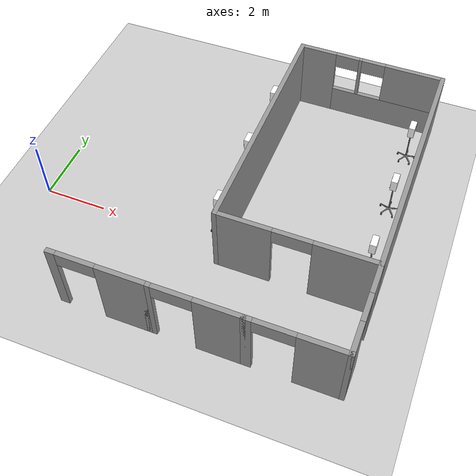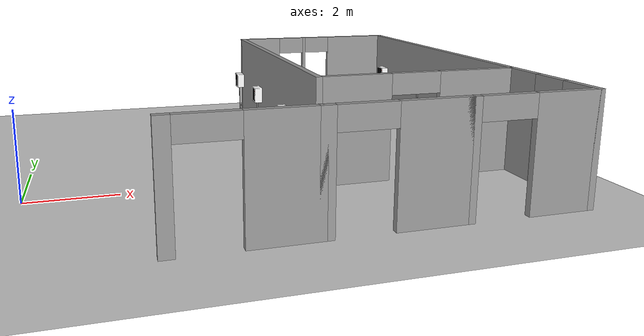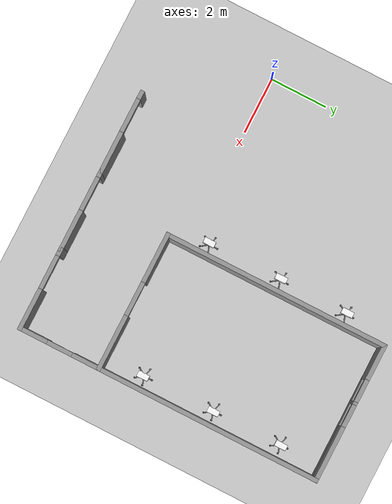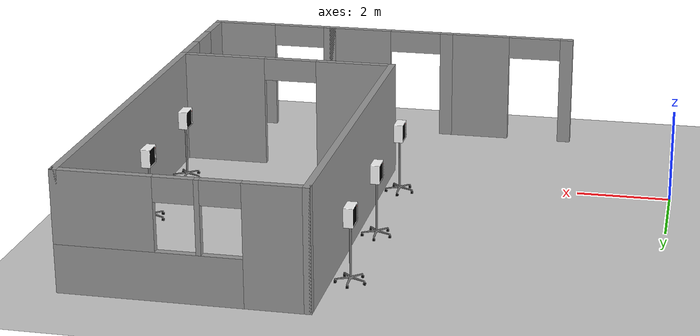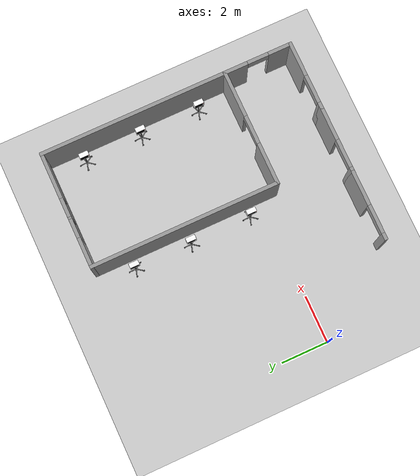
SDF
<sdf version="1.6">
 <world name="default">
  <model name="ground_plane">
   <static>1</static>
   <link name="link">
    <collision name="collision">
     <geometry><plane><normal>0 0 1</normal><size>100 100</size></plane></geometry>
     <surface><friction><ode><mu>100</mu><mu2>50</mu2></ode></friction></surface>
    </collision>
    <visual name="visual">
     <cast_shadows>0</cast_shadows>
     <geometry><plane><normal>0 0 1</normal><size>100 100</size></plane></geometry>
     <material>
      <script><uri>file://media/materials/scripts/gazebo.material</uri><name>Gazebo/Grey</name></script>
     </material>
    </visual>
   </link>
  </model>
  <model name="vitals_monitor_clone_2">
   <static>1</static>
   <link name="vitals_monitor">
    <collision name="vitals_monitor">
     <geometry><mesh><uri>model://vitals_monitor/meshes/model.dae</uri></mesh></geometry>
    </collision>
    <visual name="vitals_monitor_mesh">
     <geometry><mesh><uri>model://vitals_monitor/meshes/model.dae</uri></mesh></geometry>
    </visual>
   </link>
   <pose>10.6596 5.74993 0 0 0 -1.5708</pose>
  </model>
  <model name="vitals_monitor_clone_2_clone">
   <static>1</static>
   <link name="vitals_monitor">
    <collision name="vitals_monitor">
     <geometry><mesh><uri>model://vitals_monitor/meshes/model.dae</uri></mesh></geometry>
    </collision>
    <visual name="vitals_monitor_mesh">
     <geometry><mesh><uri>model://vitals_monitor/meshes/model.dae</uri></mesh></geometry>
    </visual>
   </link>
   <pose>10.6882 3.29236 0 0 0 -1.5708</pose>
  </model>
  <model name="vitals_monitor_clone_2_clone_0">
   <static>1</static>
   <link name="vitals_monitor">
    <collision name="vitals_monitor">
     <geometry><mesh><uri>model://vitals_monitor/meshes/model.dae</uri></mesh></geometry>
    </collision>
    <visual name="vitals_monitor_mesh">
     <geometry><mesh><uri>model://vitals_monitor/meshes/model.dae</uri></mesh></geometry>
    </visual>
   </link>
   <pose>10.7026 0.733748 0 0 0 -1.5708</pose>
  </model>
  <model name="vitals_monitor_clone_2_clone_1">
   <static>1</static>
   <link name="vitals_monitor">
    <collision name="vitals_monitor">
     <geometry><mesh><uri>model://vitals_monitor/meshes/model.dae</uri></mesh></geometry>
    </collision>
    <visual name="vitals_monitor_mesh">
     <geometry><mesh><uri>model://vitals_monitor/meshes/model.dae</uri></mesh></geometry>
    </visual>
   </link>
   <pose>5.84678 0.669607 0 0 0 -1.5708</pose>
  </model>
  <model name="vitals_monitor_clone_2_clone_2">
   <static>1</static>
   <link name="vitals_monitor">
    <collision name="vitals_monitor">
     <geometry><mesh><uri>model://vitals_monitor/meshes/model.dae</uri></mesh></geometry>
    </collision>
    <visual name="vitals_monitor_mesh">
     <geometry><mesh><uri>model://vitals_monitor/meshes/model.dae</uri></mesh></geometry>
    </visual>
   </link>
   <pose>5.82137 3.28498 0 0 0 -1.5708</pose>
  </model>
  <model name="vitals_monitor_clone_2_clone_3">
   <static>1</static>
   <link name="vitals_monitor">
    <collision name="vitals_monitor">
     <geometry><mesh><uri>model://vitals_monitor/meshes/model.dae</uri></mesh></geometry>
    </collision>
    <visual name="vitals_monitor_mesh">
     <geometry><mesh><uri>model://vitals_monitor/meshes/model.dae</uri></mesh></geometry>
    </visual>
   </link>
   <pose>5.83292 5.71579 0 0 0 -1.5708</pose>
  </model>
  <model name="hospital_v1">
   <link name="Wall_16">
    <pose>6.275 3.35 0 0 0 -1.5708</pose>
    <visual name="Wall_16_Visual">
     <pose>0 0 1.25 0 -0 0</pose>
     <geometry><box><size>8 0.15 2.5</size></box></geometry>
     <material>
      <script><uri>file://media/materials/scripts/gazebo.material</uri><name>Gazebo/Grey</name></script>
      <ambient>1 1 1 1</ambient>
     </material>
     <meta><layer>0</layer></meta>
    </visual>
    <collision name="Wall_16_Collision">
     <pose>0 0 1.25 0 -0 0</pose>
     <geometry><box><size>8 0.15 2.5</size></box></geometry>
     <surface>
      <friction>
       <ode><mu>1</mu><mu2>1</mu2><fdir1>0 0 0</fdir1><slip1>0</slip1><slip2>0</slip2></ode>
       <torsional>
        <coefficient>1</coefficient>
        <patch_radius>0</patch_radius>
        <surface_radius>0</surface_radius>
        <use_patch_radius>1</use_patch_radius>
        <ode><slip>0</slip></ode>
       </torsional>
      </friction>
      <bounce><restitution_coefficient>0</restitution_coefficient><threshold>1e+06</threshold></bounce>
      <contact>
       <collide_without_contact>0</collide_without_contact>
       <collide_without_contact_bitmask>1</collide_without_contact_bitmask>
       <collide_bitmask>1</collide_bitmask>
       <ode>
        <soft_cfm>0</soft_cfm>
        <soft_erp>0.2</soft_erp>
        <kp>1e+13</kp>
        <kd>1</kd>
        <max_vel>0.01</max_vel>
        <min_depth>0</min_depth>
       </ode>
       <bullet>
        <split_impulse>1</split_impulse>
        <split_impulse_penetration_threshold>-0.01</split_impulse_penetration_threshold>
        <soft_cfm>0</soft_cfm>
        <soft_erp>0.2</soft_erp>
        <kp>1e+13</kp>
        <kd>1</kd>
       </bullet>
      </contact>
     </surface>
    </collision>
   </link>
   <link name="Wall_24">
    <pose>8.7 7.275 0 0 -0 0</pose>
    <inertial>
     <mass>1</mass>
     <inertia><ixx>1</ixx><ixy>0</ixy><ixz>0</ixz><iyy>1</iyy><iyz>0</iyz><izz>1</izz></inertia>
    </inertial>
    <visual name="Wall_24_Visual_0">
     <pose>-1.85 0 1.25 0 -0 0</pose>
     <geometry><box><size>1.3 0.15 2.5</size></box></geometry>
     <material>
      <script><uri>file://media/materials/scripts/gazebo.material</uri><name>Gazebo/Grey</name></script>
      <ambient>1 1 1 1</ambient>
      <shader type="vertex"><normal_map>__default__</normal_map></shader>
      <diffuse>0.7 0.7 0.7 1</diffuse>
      <specular>0.01 0.01 0.01 1</specular>
      <emissive>0 0 0 1</emissive>
     </material>
     <meta><layer>0</layer></meta>
    </visual>
    <visual name="Wall_24_Visual_5">
     <pose>0.1 0 2.25 0 -0 0</pose>
     <geometry><box><size>0.8 0.15 0.5</size></box></geometry>
     <material>
      <script><uri>file://media/materials/scripts/gazebo.material</uri><name>Gazebo/Grey</name></script>
      <ambient>1 1 1 1</ambient>
      <shader type="vertex"><normal_map>__default__</normal_map></shader>
      <diffuse>0.7 0.7 0.7 1</diffuse>
      <specular>0.01 0.01 0.01 1</specular>
      <emissive>0 0 0 1</emissive>
     </material>
     <meta><layer>0</layer></meta>
    </visual>
    <visual name="Wall_24_Visual_3">
     <pose>1.5 0 1.75 0 -0 0</pose>
     <geometry><box><size>2 0.15 1.5</size></box></geometry>
     <material>
      <script><uri>file://media/materials/scripts/gazebo.material</uri><name>Gazebo/Grey</name></script>
      <ambient>1 1 1 1</ambient>
      <shader type="vertex"><normal_map>__default__</normal_map></shader>
      <diffuse>0.7 0.7 0.7 1</diffuse>
      <specular>0.01 0.01 0.01 1</specular>
      <emissive>0 0 0 1</emissive>
     </material>
     <meta><layer>0</layer></meta>
    </visual>
    <visual name="Wall_24_Visual_2">
     <pose>-0.35 0 1.75 0 -0 0</pose>
     <geometry><box><size>0.1 0.15 1.5</size></box></geometry>
     <material>
      <script><uri>file://media/materials/scripts/gazebo.material</uri><name>Gazebo/Grey</name></script>
      <ambient>1 1 1 1</ambient>
      <shader type="vertex"><normal_map>__default__</normal_map></shader>
      <diffuse>0.7 0.7 0.7 1</diffuse>
      <specular>0.01 0.01 0.01 1</specular>
      <emissive>0 0 0 1</emissive>
     </material>
     <meta><layer>0</layer></meta>
    </visual>
    <visual name="Wall_24_Visual_4">
     <pose>-0.8 0 2.25 0 -0 0</pose>
     <geometry><box><size>0.8 0.15 0.5</size></box></geometry>
     <material>
      <script><uri>file://media/materials/scripts/gazebo.material</uri><name>Gazebo/Grey</name></script>
      <ambient>1 1 1 1</ambient>
      <shader type="vertex"><normal_map>__default__</normal_map></shader>
      <diffuse>0.7 0.7 0.7 1</diffuse>
      <specular>0.01 0.01 0.01 1</specular>
      <emissive>0 0 0 1</emissive>
     </material>
     <meta><layer>0</layer></meta>
    </visual>
    <visual name="Wall_24_Visual_1">
     <pose>0.65 0 0.5 0 -0 0</pose>
     <geometry><box><size>3.7 0.15 1</size></box></geometry>
     <material>
      <script><uri>file://media/materials/scripts/gazebo.material</uri><name>Gazebo/Grey</name></script>
      <ambient>1 1 1 1</ambient>
      <shader type="vertex"><normal_map>__default__</normal_map></shader>
      <diffuse>0.7 0.7 0.7 1</diffuse>
      <specular>0.01 0.01 0.01 1</specular>
      <emissive>0 0 0 1</emissive>
     </material>
     <meta><layer>0</layer></meta>
    </visual>
    <collision name="Wall_24_Collision_1">
     <pose>0.65 0 0.5 0 -0 0</pose>
     <geometry><box><size>3.7 0.15 1</size></box></geometry>
     <surface>
      <friction>
       <ode><mu>1</mu><mu2>1</mu2><fdir1>0 0 0</fdir1><slip1>0</slip1><slip2>0</slip2></ode>
       <torsional>
        <coefficient>1</coefficient>
        <patch_radius>0</patch_radius>
        <surface_radius>0</surface_radius>
        <use_patch_radius>1</use_patch_radius>
        <ode><slip>0</slip></ode>
       </torsional>
      </friction>
      <bounce><restitution_coefficient>0</restitution_coefficient><threshold>1e+06</threshold></bounce>
      <contact>
       <collide_without_contact>0</collide_without_contact>
       <collide_without_contact_bitmask>1</collide_without_contact_bitmask>
       <collide_bitmask>1</collide_bitmask>
       <ode>
        <soft_cfm>0</soft_cfm>
        <soft_erp>0.2</soft_erp>
        <kp>1e+13</kp>
        <kd>1</kd>
        <max_vel>0.01</max_vel>
        <min_depth>0</min_depth>
       </ode>
       <bullet>
        <split_impulse>1</split_impulse>
        <split_impulse_penetration_threshold>-0.01</split_impulse_penetration_threshold>
        <soft_cfm>0</soft_cfm>
        <soft_erp>0.2</soft_erp>
        <kp>1e+13</kp>
        <kd>1</kd>
       </bullet>
      </contact>
     </surface>
    </collision>
    <collision name="Wall_24_Collision_5">
     <pose>0.1 0 2.25 0 -0 0</pose>
     <geometry><box><size>0.8 0.15 0.5</size></box></geometry>
     <surface>
      <friction>
       <ode><mu>1</mu><mu2>1</mu2><fdir1>0 0 0</fdir1><slip1>0</slip1><slip2>0</slip2></ode>
       <torsional>
        <coefficient>1</coefficient>
        <patch_radius>0</patch_radius>
        <surface_radius>0</surface_radius>
        <use_patch_radius>1</use_patch_radius>
        <ode><slip>0</slip></ode>
       </torsional>
      </friction>
      <bounce><restitution_coefficient>0</restitution_coefficient><threshold>1e+06</threshold></bounce>
      <contact>
       <collide_without_contact>0</collide_without_contact>
       <collide_without_contact_bitmask>1</collide_without_contact_bitmask>
       <collide_bitmask>1</collide_bitmask>
       <ode>
        <soft_cfm>0</soft_cfm>
        <soft_erp>0.2</soft_erp>
        <kp>1e+13</kp>
        <kd>1</kd>
        <max_vel>0.01</max_vel>
        <min_depth>0</min_depth>
       </ode>
       <bullet>
        <split_impulse>1</split_impulse>
        <split_impulse_penetration_threshold>-0.01</split_impulse_penetration_threshold>
        <soft_cfm>0</soft_cfm>
        <soft_erp>0.2</soft_erp>
        <kp>1e+13</kp>
        <kd>1</kd>
       </bullet>
      </contact>
     </surface>
    </collision>
    <collision name="Wall_24_Collision_0">
     <pose>-1.85 0 1.25 0 -0 0</pose>
     <geometry><box><size>1.3 0.15 2.5</size></box></geometry>
     <surface>
      <friction>
       <ode><mu>1</mu><mu2>1</mu2><fdir1>0 0 0</fdir1><slip1>0</slip1><slip2>0</slip2></ode>
       <torsional>
        <coefficient>1</coefficient>
        <patch_radius>0</patch_radius>
        <surface_radius>0</surface_radius>
        <use_patch_radius>1</use_patch_radius>
        <ode><slip>0</slip></ode>
       </torsional>
      </friction>
      <bounce><restitution_coefficient>0</restitution_coefficient><threshold>1e+06</threshold></bounce>
      <contact>
       <collide_without_contact>0</collide_without_contact>
       <collide_without_contact_bitmask>1</collide_without_contact_bitmask>
       <collide_bitmask>1</collide_bitmask>
       <ode>
        <soft_cfm>0</soft_cfm>
        <soft_erp>0.2</soft_erp>
        <kp>1e+13</kp>
        <kd>1</kd>
        <max_vel>0.01</max_vel>
        <min_depth>0</min_depth>
       </ode>
       <bullet>
        <split_impulse>1</split_impulse>
        <split_impulse_penetration_threshold>-0.01</split_impulse_penetration_threshold>
        <soft_cfm>0</soft_cfm>
        <soft_erp>0.2</soft_erp>
        <kp>1e+13</kp>
        <kd>1</kd>
       </bullet>
      </contact>
     </surface>
    </collision>
    <collision name="Wall_24_Collision_3">
     <pose>1.5 0 1.75 0 -0 0</pose>
     <geometry><box><size>2 0.15 1.5</size></box></geometry>
     <surface>
      <friction>
       <ode><mu>1</mu><mu2>1</mu2><fdir1>0 0 0</fdir1><slip1>0</slip1><slip2>0</slip2></ode>
       <torsional>
        <coefficient>1</coefficient>
        <patch_radius>0</patch_radius>
        <surface_radius>0</surface_radius>
        <use_patch_radius>1</use_patch_radius>
        <ode><slip>0</slip></ode>
       </torsional>
      </friction>
      <bounce><restitution_coefficient>0</restitution_coefficient><threshold>1e+06</threshold></bounce>
      <contact>
       <collide_without_contact>0</collide_without_contact>
       <collide_without_contact_bitmask>1</collide_without_contact_bitmask>
       <collide_bitmask>1</collide_bitmask>
       <ode>
        <soft_cfm>0</soft_cfm>
        <soft_erp>0.2</soft_erp>
        <kp>1e+13</kp>
        <kd>1</kd>
        <max_vel>0.01</max_vel>
        <min_depth>0</min_depth>
       </ode>
       <bullet>
        <split_impulse>1</split_impulse>
        <split_impulse_penetration_threshold>-0.01</split_impulse_penetration_threshold>
        <soft_cfm>0</soft_cfm>
        <soft_erp>0.2</soft_erp>
        <kp>1e+13</kp>
        <kd>1</kd>
       </bullet>
      </contact>
     </surface>
    </collision>
    <collision name="Wall_24_Collision_2">
     <pose>-0.35 0 1.75 0 -0 0</pose>
     <geometry><box><size>0.1 0.15 1.5</size></box></geometry>
     <surface>
      <friction>
       <ode><mu>1</mu><mu2>1</mu2><fdir1>0 0 0</fdir1><slip1>0</slip1><slip2>0</slip2></ode>
       <torsional>
        <coefficient>1</coefficient>
        <patch_radius>0</patch_radius>
        <surface_radius>0</surface_radius>
        <use_patch_radius>1</use_patch_radius>
        <ode><slip>0</slip></ode>
       </torsional>
      </friction>
      <bounce><restitution_coefficient>0</restitution_coefficient><threshold>1e+06</threshold></bounce>
      <contact>
       <collide_without_contact>0</collide_without_contact>
       <collide_without_contact_bitmask>1</collide_without_contact_bitmask>
       <collide_bitmask>1</collide_bitmask>
       <ode>
        <soft_cfm>0</soft_cfm>
        <soft_erp>0.2</soft_erp>
        <kp>1e+13</kp>
        <kd>1</kd>
        <max_vel>0.01</max_vel>
        <min_depth>0</min_depth>
       </ode>
       <bullet>
        <split_impulse>1</split_impulse>
        <split_impulse_penetration_threshold>-0.01</split_impulse_penetration_threshold>
        <soft_cfm>0</soft_cfm>
        <soft_erp>0.2</soft_erp>
        <kp>1e+13</kp>
        <kd>1</kd>
       </bullet>
      </contact>
     </surface>
    </collision>
    <collision name="Wall_24_Collision_4">
     <pose>-0.8 0 2.25 0 -0 0</pose>
     <geometry><box><size>0.8 0.15 0.5</size></box></geometry>
     <surface>
      <friction>
       <ode><mu>1</mu><mu2>1</mu2><fdir1>0 0 0</fdir1><slip1>0</slip1><slip2>0</slip2></ode>
       <torsional>
        <coefficient>1</coefficient>
        <patch_radius>0</patch_radius>
        <surface_radius>0</surface_radius>
        <use_patch_radius>1</use_patch_radius>
        <ode><slip>0</slip></ode>
       </torsional>
      </friction>
      <bounce><restitution_coefficient>0</restitution_coefficient><threshold>1e+06</threshold></bounce>
      <contact>
       <collide_without_contact>0</collide_without_contact>
       <collide_without_contact_bitmask>1</collide_without_contact_bitmask>
       <collide_bitmask>1</collide_bitmask>
       <ode>
        <soft_cfm>0</soft_cfm>
        <soft_erp>0.2</soft_erp>
        <kp>1e+13</kp>
        <kd>1</kd>
        <max_vel>0.01</max_vel>
        <min_depth>0</min_depth>
       </ode>
       <bullet>
        <split_impulse>1</split_impulse>
        <split_impulse_penetration_threshold>-0.01</split_impulse_penetration_threshold>
        <soft_cfm>0</soft_cfm>
        <soft_erp>0.2</soft_erp>
        <kp>1e+13</kp>
        <kd>1</kd>
       </bullet>
      </contact>
     </surface>
    </collision>
   </link>
   <link name="Wall_25">
    <pose>11.125 3.35 0 0 0 -1.5708</pose>
    <visual name="Wall_25_Visual">
     <pose>0 0 1.25 0 -0 0</pose>
     <geometry><box><size>8 0.15 2.5</size></box></geometry>
     <material>
      <script><uri>file://media/materials/scripts/gazebo.material</uri><name>Gazebo/Grey</name></script>
      <ambient>1 1 1 1</ambient>
     </material>
     <meta><layer>0</layer></meta>
    </visual>
    <collision name="Wall_25_Collision">
     <pose>0 0 1.25 0 -0 0</pose>
     <geometry><box><size>8 0.15 2.5</size></box></geometry>
     <surface>
      <friction>
       <ode><mu>1</mu><mu2>1</mu2><fdir1>0 0 0</fdir1><slip1>0</slip1><slip2>0</slip2></ode>
       <torsional>
        <coefficient>1</coefficient>
        <patch_radius>0</patch_radius>
        <surface_radius>0</surface_radius>
        <use_patch_radius>1</use_patch_radius>
        <ode><slip>0</slip></ode>
       </torsional>
      </friction>
      <bounce><restitution_coefficient>0</restitution_coefficient><threshold>1e+06</threshold></bounce>
      <contact>
       <collide_without_contact>0</collide_without_contact>
       <collide_without_contact_bitmask>1</collide_without_contact_bitmask>
       <collide_bitmask>1</collide_bitmask>
       <ode>
        <soft_cfm>0</soft_cfm>
        <soft_erp>0.2</soft_erp>
        <kp>1e+13</kp>
        <kd>1</kd>
        <max_vel>0.01</max_vel>
        <min_depth>0</min_depth>
       </ode>
       <bullet>
        <split_impulse>1</split_impulse>
        <split_impulse_penetration_threshold>-0.01</split_impulse_penetration_threshold>
        <soft_cfm>0</soft_cfm>
        <soft_erp>0.2</soft_erp>
        <kp>1e+13</kp>
        <kd>1</kd>
       </bullet>
      </contact>
     </surface>
    </collision>
   </link>
   <link name="Wall_26">
    <pose>8.7 -0.575 0 0 -0 3.14159</pose>
    <visual name="Wall_26_Visual_0">
     <pose>-1.5 0 1.25 0 -0 0</pose>
     <geometry><box><size>2 0.15 2.5</size></box></geometry>
     <material>
      <script><uri>file://media/materials/scripts/gazebo.material</uri><name>Gazebo/Grey</name></script>
      <ambient>1 1 1 1</ambient>
     </material>
     <meta><layer>0</layer></meta>
    </visual>
    <visual name="Wall_26_Visual_1">
     <pose>1.6 0 1.25 0 -0 0</pose>
     <geometry><box><size>1.8 0.15 2.5</size></box></geometry>
     <material>
      <script><uri>file://media/materials/scripts/gazebo.material</uri><name>Gazebo/Grey</name></script>
      <ambient>1 1 1 1</ambient>
     </material>
     <meta><layer>0</layer></meta>
    </visual>
    <visual name="Wall_26_Visual_2">
     <pose>0.1 0 2.25 0 -0 0</pose>
     <geometry><box><size>1.2 0.15 0.5</size></box></geometry>
     <material>
      <script><uri>file://media/materials/scripts/gazebo.material</uri><name>Gazebo/Grey</name></script>
      <ambient>1 1 1 1</ambient>
     </material>
     <meta><layer>0</layer></meta>
    </visual>
    <collision name="Wall_26_Collision_0">
     <pose>-1.5 0 1.25 0 -0 0</pose>
     <geometry><box><size>2 0.15 2.5</size></box></geometry>
     <surface>
      <friction>
       <ode><mu>1</mu><mu2>1</mu2><fdir1>0 0 0</fdir1><slip1>0</slip1><slip2>0</slip2></ode>
       <torsional>
        <coefficient>1</coefficient>
        <patch_radius>0</patch_radius>
        <surface_radius>0</surface_radius>
        <use_patch_radius>1</use_patch_radius>
        <ode><slip>0</slip></ode>
       </torsional>
      </friction>
      <bounce><restitution_coefficient>0</restitution_coefficient><threshold>1e+06</threshold></bounce>
      <contact>
       <collide_without_contact>0</collide_without_contact>
       <collide_without_contact_bitmask>1</collide_without_contact_bitmask>
       <collide_bitmask>1</collide_bitmask>
       <ode>
        <soft_cfm>0</soft_cfm>
        <soft_erp>0.2</soft_erp>
        <kp>1e+13</kp>
        <kd>1</kd>
        <max_vel>0.01</max_vel>
        <min_depth>0</min_depth>
       </ode>
       <bullet>
        <split_impulse>1</split_impulse>
        <split_impulse_penetration_threshold>-0.01</split_impulse_penetration_threshold>
        <soft_cfm>0</soft_cfm>
        <soft_erp>0.2</soft_erp>
        <kp>1e+13</kp>
        <kd>1</kd>
       </bullet>
      </contact>
     </surface>
    </collision>
    <collision name="Wall_26_Collision_1">
     <pose>1.6 0 1.25 0 -0 0</pose>
     <geometry><box><size>1.8 0.15 2.5</size></box></geometry>
     <surface>
      <friction>
       <ode><mu>1</mu><mu2>1</mu2><fdir1>0 0 0</fdir1><slip1>0</slip1><slip2>0</slip2></ode>
       <torsional>
        <coefficient>1</coefficient>
        <patch_radius>0</patch_radius>
        <surface_radius>0</surface_radius>
        <use_patch_radius>1</use_patch_radius>
        <ode><slip>0</slip></ode>
       </torsional>
      </friction>
      <bounce><restitution_coefficient>0</restitution_coefficient><threshold>1e+06</threshold></bounce>
      <contact>
       <collide_without_contact>0</collide_without_contact>
       <collide_without_contact_bitmask>1</collide_without_contact_bitmask>
       <collide_bitmask>1</collide_bitmask>
       <ode>
        <soft_cfm>0</soft_cfm>
        <soft_erp>0.2</soft_erp>
        <kp>1e+13</kp>
        <kd>1</kd>
        <max_vel>0.01</max_vel>
        <min_depth>0</min_depth>
       </ode>
       <bullet>
        <split_impulse>1</split_impulse>
        <split_impulse_penetration_threshold>-0.01</split_impulse_penetration_threshold>
        <soft_cfm>0</soft_cfm>
        <soft_erp>0.2</soft_erp>
        <kp>1e+13</kp>
        <kd>1</kd>
       </bullet>
      </contact>
     </surface>
    </collision>
    <collision name="Wall_26_Collision_2">
     <pose>0.1 0 2.25 0 -0 0</pose>
     <geometry><box><size>1.2 0.15 0.5</size></box></geometry>
     <surface>
      <friction>
       <ode><mu>1</mu><mu2>1</mu2><fdir1>0 0 0</fdir1><slip1>0</slip1><slip2>0</slip2></ode>
       <torsional>
        <coefficient>1</coefficient>
        <patch_radius>0</patch_radius>
        <surface_radius>0</surface_radius>
        <use_patch_radius>1</use_patch_radius>
        <ode><slip>0</slip></ode>
       </torsional>
      </friction>
      <bounce><restitution_coefficient>0</restitution_coefficient><threshold>1e+06</threshold></bounce>
      <contact>
       <collide_without_contact>0</collide_without_contact>
       <collide_without_contact_bitmask>1</collide_without_contact_bitmask>
       <collide_bitmask>1</collide_bitmask>
       <ode>
        <soft_cfm>0</soft_cfm>
        <soft_erp>0.2</soft_erp>
        <kp>1e+13</kp>
        <kd>1</kd>
        <max_vel>0.01</max_vel>
        <min_depth>0</min_depth>
       </ode>
       <bullet>
        <split_impulse>1</split_impulse>
        <split_impulse_penetration_threshold>-0.01</split_impulse_penetration_threshold>
        <soft_cfm>0</soft_cfm>
        <soft_erp>0.2</soft_erp>
        <kp>1e+13</kp>
        <kd>1</kd>
       </bullet>
      </contact>
     </surface>
    </collision>
   </link>
   <link name="Wall_28">
    <pose>11.125 -2 0 0 0 -1.5708</pose>
    <visual name="Wall_28_Visual_2">
     <pose>0 0 2.25 0 -0 0</pose>
     <geometry><box><size>0.9 0.15 0.5</size></box></geometry>
     <material>
      <script><uri>file://media/materials/scripts/gazebo.material</uri><name>Gazebo/Grey</name></script>
      <ambient>1 1 1 1</ambient>
     </material>
     <meta><layer>0</layer></meta>
    </visual>
    <visual name="Wall_28_Visual_0">
     <pose>-0.975 0 1.25 0 -0 0</pose>
     <geometry><box><size>1.05 0.15 2.5</size></box></geometry>
     <material>
      <script><uri>file://media/materials/scripts/gazebo.material</uri><name>Gazebo/Grey</name></script>
      <ambient>1 1 1 1</ambient>
     </material>
     <meta><layer>0</layer></meta>
    </visual>
    <visual name="Wall_28_Visual_1">
     <pose>0.975 0 1.25 0 -0 0</pose>
     <geometry><box><size>1.05 0.15 2.5</size></box></geometry>
     <material>
      <script><uri>file://media/materials/scripts/gazebo.material</uri><name>Gazebo/Grey</name></script>
      <ambient>1 1 1 1</ambient>
     </material>
     <meta><layer>0</layer></meta>
    </visual>
    <collision name="Wall_28_Collision_0">
     <pose>-0.975 0 1.25 0 -0 0</pose>
     <geometry><box><size>1.05 0.15 2.5</size></box></geometry>
     <surface>
      <friction>
       <ode><mu>1</mu><mu2>1</mu2><fdir1>0 0 0</fdir1><slip1>0</slip1><slip2>0</slip2></ode>
       <torsional>
        <coefficient>1</coefficient>
        <patch_radius>0</patch_radius>
        <surface_radius>0</surface_radius>
        <use_patch_radius>1</use_patch_radius>
        <ode><slip>0</slip></ode>
       </torsional>
      </friction>
      <bounce><restitution_coefficient>0</restitution_coefficient><threshold>1e+06</threshold></bounce>
      <contact>
       <collide_without_contact>0</collide_without_contact>
       <collide_without_contact_bitmask>1</collide_without_contact_bitmask>
       <collide_bitmask>1</collide_bitmask>
       <ode>
        <soft_cfm>0</soft_cfm>
        <soft_erp>0.2</soft_erp>
        <kp>1e+13</kp>
        <kd>1</kd>
        <max_vel>0.01</max_vel>
        <min_depth>0</min_depth>
       </ode>
       <bullet>
        <split_impulse>1</split_impulse>
        <split_impulse_penetration_threshold>-0.01</split_impulse_penetration_threshold>
        <soft_cfm>0</soft_cfm>
        <soft_erp>0.2</soft_erp>
        <kp>1e+13</kp>
        <kd>1</kd>
       </bullet>
      </contact>
     </surface>
    </collision>
    <collision name="Wall_28_Collision_1">
     <pose>0.975 0 1.25 0 -0 0</pose>
     <geometry><box><size>1.05 0.15 2.5</size></box></geometry>
     <surface>
      <friction>
       <ode><mu>1</mu><mu2>1</mu2><fdir1>0 0 0</fdir1><slip1>0</slip1><slip2>0</slip2></ode>
       <torsional>
        <coefficient>1</coefficient>
        <patch_radius>0</patch_radius>
        <surface_radius>0</surface_radius>
        <use_patch_radius>1</use_patch_radius>
        <ode><slip>0</slip></ode>
       </torsional>
      </friction>
      <bounce><restitution_coefficient>0</restitution_coefficient><threshold>1e+06</threshold></bounce>
      <contact>
       <collide_without_contact>0</collide_without_contact>
       <collide_without_contact_bitmask>1</collide_without_contact_bitmask>
       <collide_bitmask>1</collide_bitmask>
       <ode>
        <soft_cfm>0</soft_cfm>
        <soft_erp>0.2</soft_erp>
        <kp>1e+13</kp>
        <kd>1</kd>
        <max_vel>0.01</max_vel>
        <min_depth>0</min_depth>
       </ode>
       <bullet>
        <split_impulse>1</split_impulse>
        <split_impulse_penetration_threshold>-0.01</split_impulse_penetration_threshold>
        <soft_cfm>0</soft_cfm>
        <soft_erp>0.2</soft_erp>
        <kp>1e+13</kp>
        <kd>1</kd>
       </bullet>
      </contact>
     </surface>
    </collision>
    <collision name="Wall_28_Collision_2">
     <pose>0 0 2.25 0 -0 0</pose>
     <geometry><box><size>0.9 0.15 0.5</size></box></geometry>
     <surface>
      <friction>
       <ode><mu>1</mu><mu2>1</mu2><fdir1>0 0 0</fdir1><slip1>0</slip1><slip2>0</slip2></ode>
       <torsional>
        <coefficient>1</coefficient>
        <patch_radius>0</patch_radius>
        <surface_radius>0</surface_radius>
        <use_patch_radius>1</use_patch_radius>
        <ode><slip>0</slip></ode>
       </torsional>
      </friction>
      <bounce><restitution_coefficient>0</restitution_coefficient><threshold>1e+06</threshold></bounce>
      <contact>
       <collide_without_contact>0</collide_without_contact>
       <collide_without_contact_bitmask>1</collide_without_contact_bitmask>
       <collide_bitmask>1</collide_bitmask>
       <ode>
        <soft_cfm>0</soft_cfm>
        <soft_erp>0.2</soft_erp>
        <kp>1e+13</kp>
        <kd>1</kd>
        <max_vel>0.01</max_vel>
        <min_depth>0</min_depth>
       </ode>
       <bullet>
        <split_impulse>1</split_impulse>
        <split_impulse_penetration_threshold>-0.01</split_impulse_penetration_threshold>
        <soft_cfm>0</soft_cfm>
        <soft_erp>0.2</soft_erp>
        <kp>1e+13</kp>
        <kd>1</kd>
       </bullet>
      </contact>
     </surface>
    </collision>
   </link>
   <link name="Wall_32">
    <pose>9.7 -3.425 0 0 -0 0</pose>
    <visual name="Wall_32_Visual_1">
     <pose>0.75 0 1.25 0 -0 0</pose>
     <geometry><box><size>1.5 0.15 2.5</size></box></geometry>
     <material>
      <script><uri>file://media/materials/scripts/gazebo.material</uri><name>Gazebo/Grey</name></script>
      <ambient>1 1 1 1</ambient>
     </material>
     <meta><layer>0</layer></meta>
    </visual>
    <visual name="Wall_32_Visual_0">
     <pose>-1.35 0 1.25 0 -0 0</pose>
     <geometry><box><size>0.3 0.15 2.5</size></box></geometry>
     <material>
      <script><uri>file://media/materials/scripts/gazebo.material</uri><name>Gazebo/Grey</name></script>
      <ambient>1 1 1 1</ambient>
     </material>
     <meta><layer>0</layer></meta>
    </visual>
    <visual name="Wall_32_Visual_2">
     <pose>-0.6 0 2.25 0 -0 0</pose>
     <geometry><box><size>1.2 0.15 0.5</size></box></geometry>
     <material>
      <script><uri>file://media/materials/scripts/gazebo.material</uri><name>Gazebo/Grey</name></script>
      <ambient>1 1 1 1</ambient>
     </material>
     <meta><layer>0</layer></meta>
    </visual>
    <collision name="Wall_32_Collision_2">
     <pose>-0.6 0 2.25 0 -0 0</pose>
     <geometry><box><size>1.2 0.15 0.5</size></box></geometry>
     <surface>
      <friction>
       <ode><mu>1</mu><mu2>1</mu2><fdir1>0 0 0</fdir1><slip1>0</slip1><slip2>0</slip2></ode>
       <torsional>
        <coefficient>1</coefficient>
        <patch_radius>0</patch_radius>
        <surface_radius>0</surface_radius>
        <use_patch_radius>1</use_patch_radius>
        <ode><slip>0</slip></ode>
       </torsional>
      </friction>
      <bounce><restitution_coefficient>0</restitution_coefficient><threshold>1e+06</threshold></bounce>
      <contact>
       <collide_without_contact>0</collide_without_contact>
       <collide_without_contact_bitmask>1</collide_without_contact_bitmask>
       <collide_bitmask>1</collide_bitmask>
       <ode>
        <soft_cfm>0</soft_cfm>
        <soft_erp>0.2</soft_erp>
        <kp>1e+13</kp>
        <kd>1</kd>
        <max_vel>0.01</max_vel>
        <min_depth>0</min_depth>
       </ode>
       <bullet>
        <split_impulse>1</split_impulse>
        <split_impulse_penetration_threshold>-0.01</split_impulse_penetration_threshold>
        <soft_cfm>0</soft_cfm>
        <soft_erp>0.2</soft_erp>
        <kp>1e+13</kp>
        <kd>1</kd>
       </bullet>
      </contact>
     </surface>
    </collision>
    <collision name="Wall_32_Collision_0">
     <pose>-1.35 0 1.25 0 -0 0</pose>
     <geometry><box><size>0.3 0.15 2.5</size></box></geometry>
     <surface>
      <friction>
       <ode><mu>1</mu><mu2>1</mu2><fdir1>0 0 0</fdir1><slip1>0</slip1><slip2>0</slip2></ode>
       <torsional>
        <coefficient>1</coefficient>
        <patch_radius>0</patch_radius>
        <surface_radius>0</surface_radius>
        <use_patch_radius>1</use_patch_radius>
        <ode><slip>0</slip></ode>
       </torsional>
      </friction>
      <bounce><restitution_coefficient>0</restitution_coefficient><threshold>1e+06</threshold></bounce>
      <contact>
       <collide_without_contact>0</collide_without_contact>
       <collide_without_contact_bitmask>1</collide_without_contact_bitmask>
       <collide_bitmask>1</collide_bitmask>
       <ode>
        <soft_cfm>0</soft_cfm>
        <soft_erp>0.2</soft_erp>
        <kp>1e+13</kp>
        <kd>1</kd>
        <max_vel>0.01</max_vel>
        <min_depth>0</min_depth>
       </ode>
       <bullet>
        <split_impulse>1</split_impulse>
        <split_impulse_penetration_threshold>-0.01</split_impulse_penetration_threshold>
        <soft_cfm>0</soft_cfm>
        <soft_erp>0.2</soft_erp>
        <kp>1e+13</kp>
        <kd>1</kd>
       </bullet>
      </contact>
     </surface>
    </collision>
    <collision name="Wall_32_Collision_1">
     <pose>0.75 0 1.25 0 -0 0</pose>
     <geometry><box><size>1.5 0.15 2.5</size></box></geometry>
     <surface>
      <friction>
       <ode><mu>1</mu><mu2>1</mu2><fdir1>0 0 0</fdir1><slip1>0</slip1><slip2>0</slip2></ode>
       <torsional>
        <coefficient>1</coefficient>
        <patch_radius>0</patch_radius>
        <surface_radius>0</surface_radius>
        <use_patch_radius>1</use_patch_radius>
        <ode><slip>0</slip></ode>
       </torsional>
      </friction>
      <bounce><restitution_coefficient>0</restitution_coefficient><threshold>1e+06</threshold></bounce>
      <contact>
       <collide_without_contact>0</collide_without_contact>
       <collide_without_contact_bitmask>1</collide_without_contact_bitmask>
       <collide_bitmask>1</collide_bitmask>
       <ode>
        <soft_cfm>0</soft_cfm>
        <soft_erp>0.2</soft_erp>
        <kp>1e+13</kp>
        <kd>1</kd>
        <max_vel>0.01</max_vel>
        <min_depth>0</min_depth>
       </ode>
       <bullet>
        <split_impulse>1</split_impulse>
        <split_impulse_penetration_threshold>-0.01</split_impulse_penetration_threshold>
        <soft_cfm>0</soft_cfm>
        <soft_erp>0.2</soft_erp>
        <kp>1e+13</kp>
        <kd>1</kd>
       </bullet>
      </contact>
     </surface>
    </collision>
   </link>
   <link name="Wall_36">
    <pose>6.85 -3.425 0 0 -0 0</pose>
    <visual name="Wall_36_Visual_2">
     <pose>-0.6 0 2.25 0 -0 0</pose>
     <geometry><box><size>1.2 0.15 0.5</size></box></geometry>
     <material>
      <script><uri>file://media/materials/scripts/gazebo.material</uri><name>Gazebo/Grey</name></script>
      <ambient>1 1 1 1</ambient>
     </material>
     <meta><layer>0</layer></meta>
    </visual>
    <visual name="Wall_36_Visual_1">
     <pose>0.75 0 1.25 0 -0 0</pose>
     <geometry><box><size>1.5 0.15 2.5</size></box></geometry>
     <material>
      <script><uri>file://media/materials/scripts/gazebo.material</uri><name>Gazebo/Grey</name></script>
      <ambient>1 1 1 1</ambient>
     </material>
     <meta><layer>0</layer></meta>
    </visual>
    <visual name="Wall_36_Visual_0">
     <pose>-1.35 0 1.25 0 -0 0</pose>
     <geometry><box><size>0.3 0.15 2.5</size></box></geometry>
     <material>
      <script><uri>file://media/materials/scripts/gazebo.material</uri><name>Gazebo/Grey</name></script>
      <ambient>1 1 1 1</ambient>
     </material>
     <meta><layer>0</layer></meta>
    </visual>
    <collision name="Wall_36_Collision_0">
     <pose>-1.35 0 1.25 0 -0 0</pose>
     <geometry><box><size>0.3 0.15 2.5</size></box></geometry>
     <surface>
      <friction>
       <ode><mu>1</mu><mu2>1</mu2><fdir1>0 0 0</fdir1><slip1>0</slip1><slip2>0</slip2></ode>
       <torsional>
        <coefficient>1</coefficient>
        <patch_radius>0</patch_radius>
        <surface_radius>0</surface_radius>
        <use_patch_radius>1</use_patch_radius>
        <ode><slip>0</slip></ode>
       </torsional>
      </friction>
      <bounce><restitution_coefficient>0</restitution_coefficient><threshold>1e+06</threshold></bounce>
      <contact>
       <collide_without_contact>0</collide_without_contact>
       <collide_without_contact_bitmask>1</collide_without_contact_bitmask>
       <collide_bitmask>1</collide_bitmask>
       <ode>
        <soft_cfm>0</soft_cfm>
        <soft_erp>0.2</soft_erp>
        <kp>1e+13</kp>
        <kd>1</kd>
        <max_vel>0.01</max_vel>
        <min_depth>0</min_depth>
       </ode>
       <bullet>
        <split_impulse>1</split_impulse>
        <split_impulse_penetration_threshold>-0.01</split_impulse_penetration_threshold>
        <soft_cfm>0</soft_cfm>
        <soft_erp>0.2</soft_erp>
        <kp>1e+13</kp>
        <kd>1</kd>
       </bullet>
      </contact>
     </surface>
    </collision>
    <collision name="Wall_36_Collision_1">
     <pose>0.75 0 1.25 0 -0 0</pose>
     <geometry><box><size>1.5 0.15 2.5</size></box></geometry>
     <surface>
      <friction>
       <ode><mu>1</mu><mu2>1</mu2><fdir1>0 0 0</fdir1><slip1>0</slip1><slip2>0</slip2></ode>
       <torsional>
        <coefficient>1</coefficient>
        <patch_radius>0</patch_radius>
        <surface_radius>0</surface_radius>
        <use_patch_radius>1</use_patch_radius>
        <ode><slip>0</slip></ode>
       </torsional>
      </friction>
      <bounce><restitution_coefficient>0</restitution_coefficient><threshold>1e+06</threshold></bounce>
      <contact>
       <collide_without_contact>0</collide_without_contact>
       <collide_without_contact_bitmask>1</collide_without_contact_bitmask>
       <collide_bitmask>1</collide_bitmask>
       <ode>
        <soft_cfm>0</soft_cfm>
        <soft_erp>0.2</soft_erp>
        <kp>1e+13</kp>
        <kd>1</kd>
        <max_vel>0.01</max_vel>
        <min_depth>0</min_depth>
       </ode>
       <bullet>
        <split_impulse>1</split_impulse>
        <split_impulse_penetration_threshold>-0.01</split_impulse_penetration_threshold>
        <soft_cfm>0</soft_cfm>
        <soft_erp>0.2</soft_erp>
        <kp>1e+13</kp>
        <kd>1</kd>
       </bullet>
      </contact>
     </surface>
    </collision>
    <collision name="Wall_36_Collision_2">
     <pose>-0.6 0 2.25 0 -0 0</pose>
     <geometry><box><size>1.2 0.15 0.5</size></box></geometry>
     <surface>
      <friction>
       <ode><mu>1</mu><mu2>1</mu2><fdir1>0 0 0</fdir1><slip1>0</slip1><slip2>0</slip2></ode>
       <torsional>
        <coefficient>1</coefficient>
        <patch_radius>0</patch_radius>
        <surface_radius>0</surface_radius>
        <use_patch_radius>1</use_patch_radius>
        <ode><slip>0</slip></ode>
       </torsional>
      </friction>
      <bounce><restitution_coefficient>0</restitution_coefficient><threshold>1e+06</threshold></bounce>
      <contact>
       <collide_without_contact>0</collide_without_contact>
       <collide_without_contact_bitmask>1</collide_without_contact_bitmask>
       <collide_bitmask>1</collide_bitmask>
       <ode>
        <soft_cfm>0</soft_cfm>
        <soft_erp>0.2</soft_erp>
        <kp>1e+13</kp>
        <kd>1</kd>
        <max_vel>0.01</max_vel>
        <min_depth>0</min_depth>
       </ode>
       <bullet>
        <split_impulse>1</split_impulse>
        <split_impulse_penetration_threshold>-0.01</split_impulse_penetration_threshold>
        <soft_cfm>0</soft_cfm>
        <soft_erp>0.2</soft_erp>
        <kp>1e+13</kp>
        <kd>1</kd>
       </bullet>
      </contact>
     </surface>
    </collision>
   </link>
   <link name="Wall_40">
    <pose>4 -3.425 0 0 -0 0</pose>
    <visual name="Wall_40_Visual_2">
     <pose>-0.6 0 2.25 0 -0 0</pose>
     <geometry><box><size>1.2 0.15 0.5</size></box></geometry>
     <material>
      <script><uri>file://media/materials/scripts/gazebo.material</uri><name>Gazebo/Grey</name></script>
      <ambient>1 1 1 1</ambient>
     </material>
     <meta><layer>0</layer></meta>
    </visual>
    <visual name="Wall_40_Visual_1">
     <pose>0.75 0 1.25 0 -0 0</pose>
     <geometry><box><size>1.5 0.15 2.5</size></box></geometry>
     <material>
      <script><uri>file://media/materials/scripts/gazebo.material</uri><name>Gazebo/Grey</name></script>
      <ambient>1 1 1 1</ambient>
     </material>
     <meta><layer>0</layer></meta>
    </visual>
    <visual name="Wall_40_Visual_0">
     <pose>-1.35 0 1.25 0 -0 0</pose>
     <geometry><box><size>0.3 0.15 2.5</size></box></geometry>
     <material>
      <script><uri>file://media/materials/scripts/gazebo.material</uri><name>Gazebo/Grey</name></script>
      <ambient>1 1 1 1</ambient>
     </material>
     <meta><layer>0</layer></meta>
    </visual>
    <collision name="Wall_40_Collision_2">
     <pose>-0.6 0 2.25 0 -0 0</pose>
     <geometry><box><size>1.2 0.15 0.5</size></box></geometry>
     <surface>
      <friction>
       <ode><mu>1</mu><mu2>1</mu2><fdir1>0 0 0</fdir1><slip1>0</slip1><slip2>0</slip2></ode>
       <torsional>
        <coefficient>1</coefficient>
        <patch_radius>0</patch_radius>
        <surface_radius>0</surface_radius>
        <use_patch_radius>1</use_patch_radius>
        <ode><slip>0</slip></ode>
       </torsional>
      </friction>
      <bounce><restitution_coefficient>0</restitution_coefficient><threshold>1e+06</threshold></bounce>
      <contact>
       <collide_without_contact>0</collide_without_contact>
       <collide_without_contact_bitmask>1</collide_without_contact_bitmask>
       <collide_bitmask>1</collide_bitmask>
       <ode>
        <soft_cfm>0</soft_cfm>
        <soft_erp>0.2</soft_erp>
        <kp>1e+13</kp>
        <kd>1</kd>
        <max_vel>0.01</max_vel>
        <min_depth>0</min_depth>
       </ode>
       <bullet>
        <split_impulse>1</split_impulse>
        <split_impulse_penetration_threshold>-0.01</split_impulse_penetration_threshold>
        <soft_cfm>0</soft_cfm>
        <soft_erp>0.2</soft_erp>
        <kp>1e+13</kp>
        <kd>1</kd>
       </bullet>
      </contact>
     </surface>
    </collision>
    <collision name="Wall_40_Collision_0">
     <pose>-1.35 0 1.25 0 -0 0</pose>
     <geometry><box><size>0.3 0.15 2.5</size></box></geometry>
     <surface>
      <friction>
       <ode><mu>1</mu><mu2>1</mu2><fdir1>0 0 0</fdir1><slip1>0</slip1><slip2>0</slip2></ode>
       <torsional>
        <coefficient>1</coefficient>
        <patch_radius>0</patch_radius>
        <surface_radius>0</surface_radius>
        <use_patch_radius>1</use_patch_radius>
        <ode><slip>0</slip></ode>
       </torsional>
      </friction>
      <bounce><restitution_coefficient>0</restitution_coefficient><threshold>1e+06</threshold></bounce>
      <contact>
       <collide_without_contact>0</collide_without_contact>
       <collide_without_contact_bitmask>1</collide_without_contact_bitmask>
       <collide_bitmask>1</collide_bitmask>
       <ode>
        <soft_cfm>0</soft_cfm>
        <soft_erp>0.2</soft_erp>
        <kp>1e+13</kp>
        <kd>1</kd>
        <max_vel>0.01</max_vel>
        <min_depth>0</min_depth>
       </ode>
       <bullet>
        <split_impulse>1</split_impulse>
        <split_impulse_penetration_threshold>-0.01</split_impulse_penetration_threshold>
        <soft_cfm>0</soft_cfm>
        <soft_erp>0.2</soft_erp>
        <kp>1e+13</kp>
        <kd>1</kd>
       </bullet>
      </contact>
     </surface>
    </collision>
    <collision name="Wall_40_Collision_1">
     <pose>0.75 0 1.25 0 -0 0</pose>
     <geometry><box><size>1.5 0.15 2.5</size></box></geometry>
     <surface>
      <friction>
       <ode><mu>1</mu><mu2>1</mu2><fdir1>0 0 0</fdir1><slip1>0</slip1><slip2>0</slip2></ode>
       <torsional>
        <coefficient>1</coefficient>
        <patch_radius>0</patch_radius>
        <surface_radius>0</surface_radius>
        <use_patch_radius>1</use_patch_radius>
        <ode><slip>0</slip></ode>
       </torsional>
      </friction>
      <bounce><restitution_coefficient>0</restitution_coefficient><threshold>1e+06</threshold></bounce>
      <contact>
       <collide_without_contact>0</collide_without_contact>
       <collide_without_contact_bitmask>1</collide_without_contact_bitmask>
       <collide_bitmask>1</collide_bitmask>
       <ode>
        <soft_cfm>0</soft_cfm>
        <soft_erp>0.2</soft_erp>
        <kp>1e+13</kp>
        <kd>1</kd>
        <max_vel>0.01</max_vel>
        <min_depth>0</min_depth>
       </ode>
       <bullet>
        <split_impulse>1</split_impulse>
        <split_impulse_penetration_threshold>-0.01</split_impulse_penetration_threshold>
        <soft_cfm>0</soft_cfm>
        <soft_erp>0.2</soft_erp>
        <kp>1e+13</kp>
        <kd>1</kd>
       </bullet>
      </contact>
     </surface>
    </collision>
   </link>
   <static>1</static>
   <pose>0.01191 -0.04531 0 0 -0 0</pose>
  </model>
 </world>
</sdf>
